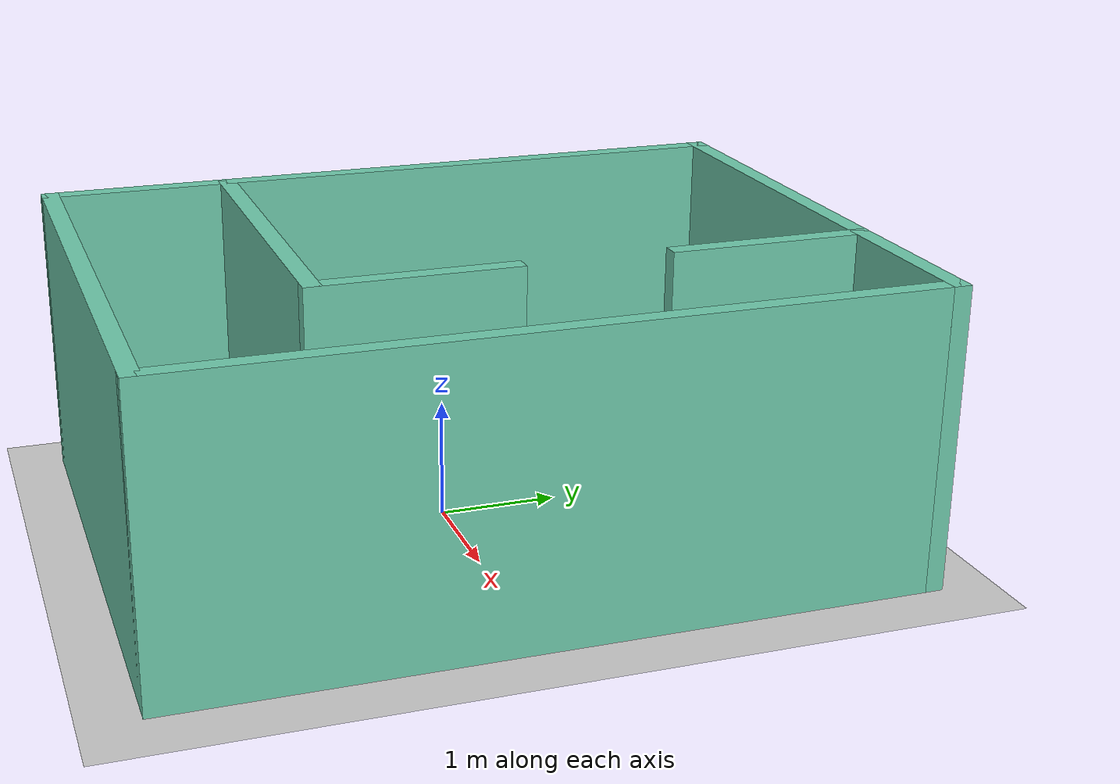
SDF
<sdf version="1.6">
 <world name="default">
  <light name="sun" type="directional">
   <pose>0 0 10 0 -0 0</pose>
   <diffuse>0.8 0.8 0.8 1</diffuse>
   <specular>0.1 0.1 0.1 1</specular>
   <attenuation>
    <range>1000</range>
    <constant>0.9</constant>
    <linear>0.01</linear>
    <quadratic>0.001</quadratic>
   </attenuation>
   <direction>-0.5 0.5 -1</direction>
  </light>
  <model name="ground_plane">
   <static>1</static>
   <link name="link">
    <collision name="collision">
     <geometry><plane><normal>0 0 1</normal><size>100 100</size></plane></geometry>
     <surface><friction><ode><mu>100</mu><mu2>50</mu2></ode></friction></surface>
    </collision>
    <visual name="visual">
     <cast_shadows>0</cast_shadows>
     <geometry><plane><normal>0 0 1</normal><size>100 100</size></plane></geometry>
     <material>
      <script><uri>file://media/materials/scripts/gazebo.material</uri><name>Gazebo/Grey</name></script>
     </material>
    </visual>
   </link>
  </model>
  <gravity>0 0 -9.8</gravity>
  <magnetic_field>6e-06 2.3e-05 -4.2e-05</magnetic_field>
  <atmosphere type="adiabatic"/>
  <physics name="default_physics" default="0" type="ode">
   <max_step_size>0.001</max_step_size>
   <real_time_factor>1</real_time_factor>
   <real_time_update_rate>1000</real_time_update_rate>
  </physics>
  <scene><ambient>0.4 0.4 0.4 1</ambient><background>0.7 0.7 0.7 1</background><shadows>1</shadows></scene>
  <spherical_coordinates>
   <surface_model>EARTH_WGS84</surface_model>
   <latitude_deg>0</latitude_deg>
   <longitude_deg>0</longitude_deg>
   <elevation>0</elevation>
   <heading_deg>0</heading_deg>
  </spherical_coordinates>
  <model name="Project1">
   <pose>0.210346 0.168217 0 0 -0 0</pose>
   <link name="Wall_13">
    <collision name="Wall_13_Collision">
     <geometry><box><size>6.25 0.15 2.5</size></box></geometry>
     <pose>0 0 1.25 0 -0 0</pose>
    </collision>
    <visual name="Wall_13_Visual">
     <pose>0 0 1.25 0 -0 0</pose>
     <geometry><box><size>6.25 0.15 2.5</size></box></geometry>
     <material>
      <script><uri>file://media/materials/scripts/gazebo.material</uri><name>Gazebo/Grey</name></script>
      <ambient>0.435294 0.796078 0.67451 1</ambient>
     </material>
    </visual>
    <pose>-2.3 0 0 0 0 -1.5708</pose>
   </link>
   <link name="Wall_14">
    <collision name="Wall_14_Collision">
     <geometry><box><size>4.75 0.15 2.5</size></box></geometry>
     <pose>0 0 1.25 0 -0 0</pose>
    </collision>
    <visual name="Wall_14_Visual">
     <pose>0 0 1.25 0 -0 0</pose>
     <geometry><box><size>4.75 0.15 2.5</size></box></geometry>
     <material>
      <script><uri>file://media/materials/scripts/gazebo.material</uri><name>Gazebo/Grey</name></script>
      <ambient>0.435294 0.796078 0.67451 1</ambient>
     </material>
    </visual>
    <pose>0 -3.05 0 0 -0 0</pose>
   </link>
   <link name="Wall_15">
    <collision name="Wall_15_Collision">
     <geometry><box><size>6.25 0.15 2.5</size></box></geometry>
     <pose>0 0 1.25 0 -0 0</pose>
    </collision>
    <visual name="Wall_15_Visual">
     <pose>0 0 1.25 0 -0 0</pose>
     <geometry><box><size>6.25 0.15 2.5</size></box></geometry>
     <material>
      <script><uri>file://media/materials/scripts/gazebo.material</uri><name>Gazebo/Grey</name></script>
      <ambient>0.435294 0.796078 0.67451 1</ambient>
     </material>
    </visual>
    <pose>2.3 0 0 0 -0 1.5708</pose>
   </link>
   <link name="Wall_16">
    <collision name="Wall_16_Collision">
     <geometry><box><size>4.75 0.15 2.5</size></box></geometry>
     <pose>0 0 1.25 0 -0 0</pose>
    </collision>
    <visual name="Wall_16_Visual">
     <pose>0 0 1.25 0 -0 0</pose>
     <geometry><box><size>4.75 0.15 2.5</size></box></geometry>
     <material>
      <script><uri>file://media/materials/scripts/gazebo.material</uri><name>Gazebo/Grey</name></script>
      <ambient>0.435294 0.796078 0.67451 1</ambient>
     </material>
    </visual>
    <pose>0 3.05 0 0 -0 3.14159</pose>
   </link>
   <link name="Wall_18">
    <collision name="Wall_18_Collision">
     <geometry><box><size>1.75 0.15 2.5</size></box></geometry>
     <pose>0 0 1.25 0 -0 0</pose>
    </collision>
    <visual name="Wall_18_Visual">
     <pose>0 0 1.25 0 -0 0</pose>
     <geometry><box><size>1.75 0.15 2.5</size></box></geometry>
     <material>
      <script><uri>file://media/materials/scripts/gazebo.material</uri><name>Gazebo/Grey</name></script>
      <ambient>0.435294 0.796078 0.67451 1</ambient>
     </material>
    </visual>
    <pose>0.855313 2.25 0 0 0 -1.5708</pose>
   </link>
   <link name="Wall_20">
    <collision name="Wall_20_Collision">
     <geometry><box><size>3.25 0.15 2.5</size></box></geometry>
     <pose>0 0 1.25 0 -0 0</pose>
    </collision>
    <visual name="Wall_20_Visual">
     <pose>0 0 1.25 0 -0 0</pose>
     <geometry><box><size>3.25 0.15 2.5</size></box></geometry>
     <material>
      <script><uri>file://media/materials/scripts/gazebo.material</uri><name>Gazebo/Grey</name></script>
      <ambient>0.435294 0.796078 0.67451 1</ambient>
     </material>
    </visual>
    <pose>-0.715889 -1.50388 0 0 -0 0</pose>
   </link>
   <link name="Wall_21">
    <collision name="Wall_21_Collision">
     <geometry><box><size>0.15 0.15 2.5</size></box></geometry>
     <pose>0 0 1.25 0 -0 0</pose>
    </collision>
    <visual name="Wall_21_Visual">
     <pose>0 0 1.25 0 -0 0</pose>
     <geometry><box><size>0.15 0.15 2.5</size></box></geometry>
     <material>
      <script><uri>file://media/materials/scripts/gazebo.material</uri><name>Gazebo/Grey</name></script>
      <ambient>1 1 1 1</ambient>
     </material>
    </visual>
    <pose>0.834111 -1.50388 0 0 -0 0</pose>
   </link>
   <link name="Wall_22">
    <collision name="Wall_22_Collision">
     <geometry><box><size>1.75 0.15 2.5</size></box></geometry>
     <pose>0 0 1.25 0 -0 0</pose>
    </collision>
    <visual name="Wall_22_Visual">
     <pose>0 0 1.25 0 -0 0</pose>
     <geometry><box><size>1.75 0.15 2.5</size></box></geometry>
     <material>
      <script><uri>file://media/materials/scripts/gazebo.material</uri><name>Gazebo/Grey</name></script>
      <ambient>0.435294 0.796078 0.67451 1</ambient>
     </material>
    </visual>
    <pose>0.834111 -0.703884 0 0 -0 1.5708</pose>
   </link>
   <static>1</static>
  </model>
 </world>
</sdf>
